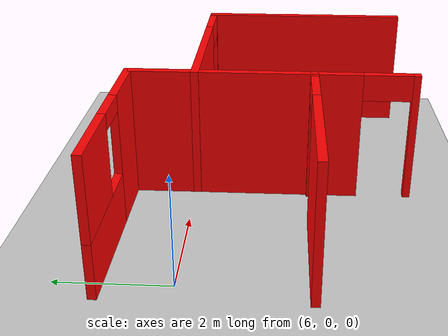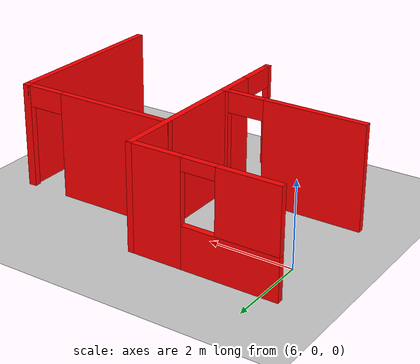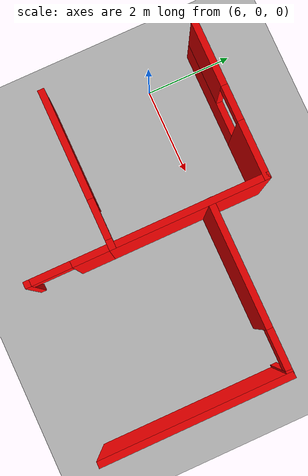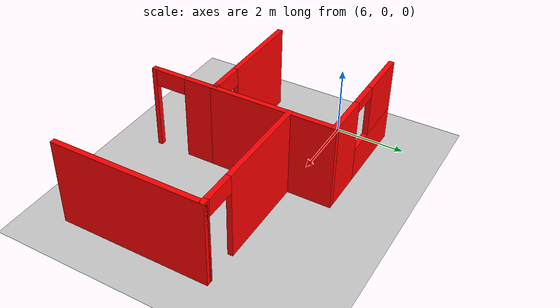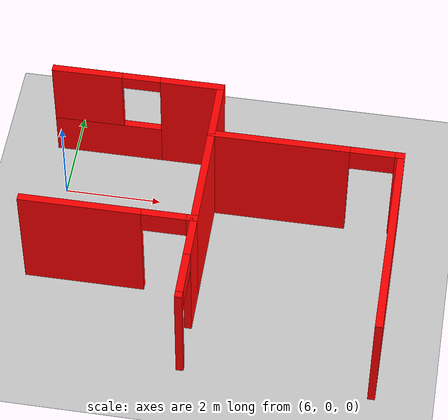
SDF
<sdf version="1.6">
 <world name="default">
  <model name="ground_plane">
   <static>1</static>
   <link name="link">
    <collision name="collision">
     <geometry><plane><normal>0 0 1</normal><size>100 100</size></plane></geometry>
     <surface><friction><ode><mu>100</mu><mu2>50</mu2></ode></friction></surface>
    </collision>
    <visual name="visual">
     <cast_shadows>0</cast_shadows>
     <geometry><plane><normal>0 0 1</normal><size>100 100</size></plane></geometry>
     <material>
      <script><uri>file://media/materials/scripts/gazebo.material</uri><name>Gazebo/Grey</name></script>
     </material>
    </visual>
   </link>
  </model>
  <model name="1floorHouse">
   <link name="Wall_322">
    <pose>2.9912 2.388 0 0 -0 0</pose>
    <visual name="Wall_322_Visual_0">
     <pose>-0.562525 0 1.25 0 -0 0</pose>
     <geometry><box><size>2.47495 0.15 2.5</size></box></geometry>
     <material>
      <script><uri>file://media/materials/scripts/gazebo.material</uri><name>Gazebo/Grey</name></script>
      <ambient>1 0 0 1</ambient>
      <diffuse>0.7 0.7 0.7 1</diffuse>
      <specular>0.01 0.01 0.01 1</specular>
      <emissive>0 0 0 1</emissive>
     </material>
    </visual>
    <visual name="Wall_322_Visual_1">
     <pose>1.68748 0 1.25 0 -0 0</pose>
     <geometry><box><size>0.225051 0.15 2.5</size></box></geometry>
     <material>
      <script><uri>file://media/materials/scripts/gazebo.material</uri><name>Gazebo/Grey</name></script>
      <ambient>1 0 0 1</ambient>
      <diffuse>0.7 0.7 0.7 1</diffuse>
      <specular>0.01 0.01 0.01 1</specular>
      <emissive>0 0 0 1</emissive>
     </material>
    </visual>
    <visual name="Wall_322_Visual_2">
     <pose>1.12495 0 2.25 0 -0 0</pose>
     <geometry><box><size>0.9 0.15 0.5</size></box></geometry>
     <material>
      <script><uri>file://media/materials/scripts/gazebo.material</uri><name>Gazebo/Grey</name></script>
      <ambient>1 0 0 1</ambient>
      <diffuse>0.7 0.7 0.7 1</diffuse>
      <specular>0.01 0.01 0.01 1</specular>
      <emissive>0 0 0 1</emissive>
     </material>
    </visual>
    <collision name="Wall_322_Collision_0">
     <pose>-0.562525 0 1.25 0 -0 0</pose>
     <geometry><box><size>2.47495 0.15 2.5</size></box></geometry>
     <surface>
      <friction>
       <ode><mu>1</mu><mu2>1</mu2><fdir1>0 0 0</fdir1><slip1>0</slip1><slip2>0</slip2></ode>
       <torsional>
        <coefficient>1</coefficient>
        <patch_radius>0</patch_radius>
        <surface_radius>0</surface_radius>
        <use_patch_radius>1</use_patch_radius>
        <ode><slip>0</slip></ode>
       </torsional>
      </friction>
      <bounce><restitution_coefficient>0</restitution_coefficient><threshold>1e+06</threshold></bounce>
      <contact>
       <collide_without_contact>0</collide_without_contact>
       <collide_without_contact_bitmask>1</collide_without_contact_bitmask>
       <collide_bitmask>1</collide_bitmask>
       <ode>
        <soft_cfm>0</soft_cfm>
        <soft_erp>0.2</soft_erp>
        <kp>1e+13</kp>
        <kd>1</kd>
        <max_vel>0.01</max_vel>
        <min_depth>0</min_depth>
       </ode>
       <bullet>
        <split_impulse>1</split_impulse>
        <split_impulse_penetration_threshold>-0.01</split_impulse_penetration_threshold>
        <soft_cfm>0</soft_cfm>
        <soft_erp>0.2</soft_erp>
        <kp>1e+13</kp>
        <kd>1</kd>
       </bullet>
      </contact>
     </surface>
    </collision>
    <collision name="Wall_322_Collision_2">
     <pose>1.12495 0 2.25 0 -0 0</pose>
     <geometry><box><size>0.9 0.15 0.5</size></box></geometry>
     <surface>
      <friction>
       <ode><mu>1</mu><mu2>1</mu2><fdir1>0 0 0</fdir1><slip1>0</slip1><slip2>0</slip2></ode>
       <torsional>
        <coefficient>1</coefficient>
        <patch_radius>0</patch_radius>
        <surface_radius>0</surface_radius>
        <use_patch_radius>1</use_patch_radius>
        <ode><slip>0</slip></ode>
       </torsional>
      </friction>
      <bounce><restitution_coefficient>0</restitution_coefficient><threshold>1e+06</threshold></bounce>
      <contact>
       <collide_without_contact>0</collide_without_contact>
       <collide_without_contact_bitmask>1</collide_without_contact_bitmask>
       <collide_bitmask>1</collide_bitmask>
       <ode>
        <soft_cfm>0</soft_cfm>
        <soft_erp>0.2</soft_erp>
        <kp>1e+13</kp>
        <kd>1</kd>
        <max_vel>0.01</max_vel>
        <min_depth>0</min_depth>
       </ode>
       <bullet>
        <split_impulse>1</split_impulse>
        <split_impulse_penetration_threshold>-0.01</split_impulse_penetration_threshold>
        <soft_cfm>0</soft_cfm>
        <soft_erp>0.2</soft_erp>
        <kp>1e+13</kp>
        <kd>1</kd>
       </bullet>
      </contact>
     </surface>
    </collision>
    <collision name="Wall_322_Collision_1">
     <pose>1.68748 0 1.25 0 -0 0</pose>
     <geometry><box><size>0.225051 0.15 2.5</size></box></geometry>
     <surface>
      <friction>
       <ode><mu>1</mu><mu2>1</mu2><fdir1>0 0 0</fdir1><slip1>0</slip1><slip2>0</slip2></ode>
       <torsional>
        <coefficient>1</coefficient>
        <patch_radius>0</patch_radius>
        <surface_radius>0</surface_radius>
        <use_patch_radius>1</use_patch_radius>
        <ode><slip>0</slip></ode>
       </torsional>
      </friction>
      <bounce><restitution_coefficient>0</restitution_coefficient><threshold>1e+06</threshold></bounce>
      <contact>
       <collide_without_contact>0</collide_without_contact>
       <collide_without_contact_bitmask>1</collide_without_contact_bitmask>
       <collide_bitmask>1</collide_bitmask>
       <ode>
        <soft_cfm>0</soft_cfm>
        <soft_erp>0.2</soft_erp>
        <kp>1e+13</kp>
        <kd>1</kd>
        <max_vel>0.01</max_vel>
        <min_depth>0</min_depth>
       </ode>
       <bullet>
        <split_impulse>1</split_impulse>
        <split_impulse_penetration_threshold>-0.01</split_impulse_penetration_threshold>
        <soft_cfm>0</soft_cfm>
        <soft_erp>0.2</soft_erp>
        <kp>1e+13</kp>
        <kd>1</kd>
       </bullet>
      </contact>
     </surface>
    </collision>
   </link>
   <link name="Wall_323">
    <pose>4.71621 4.113 0 0 -0 1.5708</pose>
    <visual name="Wall_323_Visual">
     <pose>0 0 1.25 0 -0 0</pose>
     <geometry><box><size>3.6 0.15 2.5</size></box></geometry>
     <material>
      <script><uri>file://media/materials/scripts/gazebo.material</uri><name>Gazebo/Grey</name></script>
      <ambient>1 0 0 1</ambient>
      <diffuse>0.7 0.7 0.7 1</diffuse>
      <specular>0.01 0.01 0.01 1</specular>
      <emissive>0 0 0 1</emissive>
     </material>
    </visual>
    <collision name="Wall_323_Collision">
     <pose>0 0 1.25 0 -0 0</pose>
     <geometry><box><size>3.6 0.15 2.5</size></box></geometry>
     <surface>
      <friction>
       <ode><mu>1</mu><mu2>1</mu2><fdir1>0 0 0</fdir1><slip1>0</slip1><slip2>0</slip2></ode>
       <torsional>
        <coefficient>1</coefficient>
        <patch_radius>0</patch_radius>
        <surface_radius>0</surface_radius>
        <use_patch_radius>1</use_patch_radius>
        <ode><slip>0</slip></ode>
       </torsional>
      </friction>
      <bounce><restitution_coefficient>0</restitution_coefficient><threshold>1e+06</threshold></bounce>
      <contact>
       <collide_without_contact>0</collide_without_contact>
       <collide_without_contact_bitmask>1</collide_without_contact_bitmask>
       <collide_bitmask>1</collide_bitmask>
       <ode>
        <soft_cfm>0</soft_cfm>
        <soft_erp>0.2</soft_erp>
        <kp>1e+13</kp>
        <kd>1</kd>
        <max_vel>0.01</max_vel>
        <min_depth>0</min_depth>
       </ode>
       <bullet>
        <split_impulse>1</split_impulse>
        <split_impulse_penetration_threshold>-0.01</split_impulse_penetration_threshold>
        <soft_cfm>0</soft_cfm>
        <soft_erp>0.2</soft_erp>
        <kp>1e+13</kp>
        <kd>1</kd>
       </bullet>
      </contact>
     </surface>
    </collision>
   </link>
   <link name="Wall_324">
    <pose>2.9912 5.838 0 0 -0 3.14159</pose>
    <visual name="Wall_324_Visual_0">
     <pose>-1.13431 0 1.25 0 -0 0</pose>
     <geometry><box><size>1.33138 0.15 2.5</size></box></geometry>
     <material>
      <script><uri>file://media/materials/scripts/gazebo.material</uri><name>Gazebo/Grey</name></script>
      <ambient>1 0 0 1</ambient>
      <diffuse>0.7 0.7 0.7 1</diffuse>
      <specular>0.01 0.01 0.01 1</specular>
      <emissive>0 0 0 1</emissive>
     </material>
    </visual>
    <visual name="Wall_324_Visual_1">
     <pose>0.665691 0 0.5 0 -0 0</pose>
     <geometry><box><size>2.26862 0.15 1</size></box></geometry>
     <material>
      <script><uri>file://media/materials/scripts/gazebo.material</uri><name>Gazebo/Grey</name></script>
      <ambient>1 0 0 1</ambient>
      <diffuse>0.7 0.7 0.7 1</diffuse>
      <specular>0.01 0.01 0.01 1</specular>
      <emissive>0 0 0 1</emissive>
     </material>
    </visual>
    <visual name="Wall_324_Visual_3">
     <pose>-0.068619 0 2.35 0 -0 0</pose>
     <geometry><box><size>0.8 0.15 0.3</size></box></geometry>
     <material>
      <script><uri>file://media/materials/scripts/gazebo.material</uri><name>Gazebo/Grey</name></script>
      <ambient>1 0 0 1</ambient>
      <diffuse>0.7 0.7 0.7 1</diffuse>
      <specular>0.01 0.01 0.01 1</specular>
      <emissive>0 0 0 1</emissive>
     </material>
    </visual>
    <visual name="Wall_324_Visual_2">
     <pose>1.06569 0 1.75 0 -0 0</pose>
     <geometry><box><size>1.46862 0.15 1.5</size></box></geometry>
     <material>
      <script><uri>file://media/materials/scripts/gazebo.material</uri><name>Gazebo/Grey</name></script>
      <ambient>1 0 0 1</ambient>
      <diffuse>0.7 0.7 0.7 1</diffuse>
      <specular>0.01 0.01 0.01 1</specular>
      <emissive>0 0 0 1</emissive>
     </material>
    </visual>
    <collision name="Wall_324_Collision_0">
     <pose>-1.13431 0 1.25 0 -0 0</pose>
     <geometry><box><size>1.33138 0.15 2.5</size></box></geometry>
     <surface>
      <friction>
       <ode><mu>1</mu><mu2>1</mu2><fdir1>0 0 0</fdir1><slip1>0</slip1><slip2>0</slip2></ode>
       <torsional>
        <coefficient>1</coefficient>
        <patch_radius>0</patch_radius>
        <surface_radius>0</surface_radius>
        <use_patch_radius>1</use_patch_radius>
        <ode><slip>0</slip></ode>
       </torsional>
      </friction>
      <bounce><restitution_coefficient>0</restitution_coefficient><threshold>1e+06</threshold></bounce>
      <contact>
       <collide_without_contact>0</collide_without_contact>
       <collide_without_contact_bitmask>1</collide_without_contact_bitmask>
       <collide_bitmask>1</collide_bitmask>
       <ode>
        <soft_cfm>0</soft_cfm>
        <soft_erp>0.2</soft_erp>
        <kp>1e+13</kp>
        <kd>1</kd>
        <max_vel>0.01</max_vel>
        <min_depth>0</min_depth>
       </ode>
       <bullet>
        <split_impulse>1</split_impulse>
        <split_impulse_penetration_threshold>-0.01</split_impulse_penetration_threshold>
        <soft_cfm>0</soft_cfm>
        <soft_erp>0.2</soft_erp>
        <kp>1e+13</kp>
        <kd>1</kd>
       </bullet>
      </contact>
     </surface>
    </collision>
    <collision name="Wall_324_Collision_1">
     <pose>0.665691 0 0.5 0 -0 0</pose>
     <geometry><box><size>2.26862 0.15 1</size></box></geometry>
     <surface>
      <friction>
       <ode><mu>1</mu><mu2>1</mu2><fdir1>0 0 0</fdir1><slip1>0</slip1><slip2>0</slip2></ode>
       <torsional>
        <coefficient>1</coefficient>
        <patch_radius>0</patch_radius>
        <surface_radius>0</surface_radius>
        <use_patch_radius>1</use_patch_radius>
        <ode><slip>0</slip></ode>
       </torsional>
      </friction>
      <bounce><restitution_coefficient>0</restitution_coefficient><threshold>1e+06</threshold></bounce>
      <contact>
       <collide_without_contact>0</collide_without_contact>
       <collide_without_contact_bitmask>1</collide_without_contact_bitmask>
       <collide_bitmask>1</collide_bitmask>
       <ode>
        <soft_cfm>0</soft_cfm>
        <soft_erp>0.2</soft_erp>
        <kp>1e+13</kp>
        <kd>1</kd>
        <max_vel>0.01</max_vel>
        <min_depth>0</min_depth>
       </ode>
       <bullet>
        <split_impulse>1</split_impulse>
        <split_impulse_penetration_threshold>-0.01</split_impulse_penetration_threshold>
        <soft_cfm>0</soft_cfm>
        <soft_erp>0.2</soft_erp>
        <kp>1e+13</kp>
        <kd>1</kd>
       </bullet>
      </contact>
     </surface>
    </collision>
    <collision name="Wall_324_Collision_2">
     <pose>1.06569 0 1.75 0 -0 0</pose>
     <geometry><box><size>1.46862 0.15 1.5</size></box></geometry>
     <surface>
      <friction>
       <ode><mu>1</mu><mu2>1</mu2><fdir1>0 0 0</fdir1><slip1>0</slip1><slip2>0</slip2></ode>
       <torsional>
        <coefficient>1</coefficient>
        <patch_radius>0</patch_radius>
        <surface_radius>0</surface_radius>
        <use_patch_radius>1</use_patch_radius>
        <ode><slip>0</slip></ode>
       </torsional>
      </friction>
      <bounce><restitution_coefficient>0</restitution_coefficient><threshold>1e+06</threshold></bounce>
      <contact>
       <collide_without_contact>0</collide_without_contact>
       <collide_without_contact_bitmask>1</collide_without_contact_bitmask>
       <collide_bitmask>1</collide_bitmask>
       <ode>
        <soft_cfm>0</soft_cfm>
        <soft_erp>0.2</soft_erp>
        <kp>1e+13</kp>
        <kd>1</kd>
        <max_vel>0.01</max_vel>
        <min_depth>0</min_depth>
       </ode>
       <bullet>
        <split_impulse>1</split_impulse>
        <split_impulse_penetration_threshold>-0.01</split_impulse_penetration_threshold>
        <soft_cfm>0</soft_cfm>
        <soft_erp>0.2</soft_erp>
        <kp>1e+13</kp>
        <kd>1</kd>
       </bullet>
      </contact>
     </surface>
    </collision>
    <collision name="Wall_324_Collision_3">
     <pose>-0.068619 0 2.35 0 -0 0</pose>
     <geometry><box><size>0.8 0.15 0.3</size></box></geometry>
     <surface>
      <friction>
       <ode><mu>1</mu><mu2>1</mu2><fdir1>0 0 0</fdir1><slip1>0</slip1><slip2>0</slip2></ode>
       <torsional>
        <coefficient>1</coefficient>
        <patch_radius>0</patch_radius>
        <surface_radius>0</surface_radius>
        <use_patch_radius>1</use_patch_radius>
        <ode><slip>0</slip></ode>
       </torsional>
      </friction>
      <bounce><restitution_coefficient>0</restitution_coefficient><threshold>1e+06</threshold></bounce>
      <contact>
       <collide_without_contact>0</collide_without_contact>
       <collide_without_contact_bitmask>1</collide_without_contact_bitmask>
       <collide_bitmask>1</collide_bitmask>
       <ode>
        <soft_cfm>0</soft_cfm>
        <soft_erp>0.2</soft_erp>
        <kp>1e+13</kp>
        <kd>1</kd>
        <max_vel>0.01</max_vel>
        <min_depth>0</min_depth>
       </ode>
       <bullet>
        <split_impulse>1</split_impulse>
        <split_impulse_penetration_threshold>-0.01</split_impulse_penetration_threshold>
        <soft_cfm>0</soft_cfm>
        <soft_erp>0.2</soft_erp>
        <kp>1e+13</kp>
        <kd>1</kd>
       </bullet>
      </contact>
     </surface>
    </collision>
   </link>
   <link name="Wall_326">
    <pose>6.6372 4.588 0 0 -0 0</pose>
    <visual name="Wall_326_Visual_0">
     <pose>-0.551177 0 1.25 0 -0 0</pose>
     <geometry><box><size>2.89765 0.15 2.5</size></box></geometry>
     <material>
      <script><uri>file://media/materials/scripts/gazebo.material</uri><name>Gazebo/Grey</name></script>
      <ambient>1 0 0 1</ambient>
      <diffuse>0.7 0.7 0.7 1</diffuse>
      <specular>0.01 0.01 0.01 1</specular>
      <emissive>0 0 0 1</emissive>
     </material>
    </visual>
    <visual name="Wall_326_Visual_1">
     <pose>1.89882 0 1.25 0 -0 0</pose>
     <geometry><box><size>0.202354 0.15 2.5</size></box></geometry>
     <material>
      <script><uri>file://media/materials/scripts/gazebo.material</uri><name>Gazebo/Grey</name></script>
      <ambient>1 0 0 1</ambient>
      <diffuse>0.7 0.7 0.7 1</diffuse>
      <specular>0.01 0.01 0.01 1</specular>
      <emissive>0 0 0 1</emissive>
     </material>
    </visual>
    <visual name="Wall_326_Visual_2">
     <pose>1.34765 0 2.25 0 -0 0</pose>
     <geometry><box><size>0.9 0.15 0.5</size></box></geometry>
     <material>
      <script><uri>file://media/materials/scripts/gazebo.material</uri><name>Gazebo/Grey</name></script>
      <ambient>1 0 0 1</ambient>
      <diffuse>0.7 0.7 0.7 1</diffuse>
      <specular>0.01 0.01 0.01 1</specular>
      <emissive>0 0 0 1</emissive>
     </material>
    </visual>
    <collision name="Wall_326_Collision_0">
     <pose>-0.551177 0 1.25 0 -0 0</pose>
     <geometry><box><size>2.89765 0.15 2.5</size></box></geometry>
     <surface>
      <friction>
       <ode><mu>1</mu><mu2>1</mu2><fdir1>0 0 0</fdir1><slip1>0</slip1><slip2>0</slip2></ode>
       <torsional>
        <coefficient>1</coefficient>
        <patch_radius>0</patch_radius>
        <surface_radius>0</surface_radius>
        <use_patch_radius>1</use_patch_radius>
        <ode><slip>0</slip></ode>
       </torsional>
      </friction>
      <bounce><restitution_coefficient>0</restitution_coefficient><threshold>1e+06</threshold></bounce>
      <contact>
       <collide_without_contact>0</collide_without_contact>
       <collide_without_contact_bitmask>1</collide_without_contact_bitmask>
       <collide_bitmask>1</collide_bitmask>
       <ode>
        <soft_cfm>0</soft_cfm>
        <soft_erp>0.2</soft_erp>
        <kp>1e+13</kp>
        <kd>1</kd>
        <max_vel>0.01</max_vel>
        <min_depth>0</min_depth>
       </ode>
       <bullet>
        <split_impulse>1</split_impulse>
        <split_impulse_penetration_threshold>-0.01</split_impulse_penetration_threshold>
        <soft_cfm>0</soft_cfm>
        <soft_erp>0.2</soft_erp>
        <kp>1e+13</kp>
        <kd>1</kd>
       </bullet>
      </contact>
     </surface>
    </collision>
    <collision name="Wall_326_Collision_2">
     <pose>1.34765 0 2.25 0 -0 0</pose>
     <geometry><box><size>0.9 0.15 0.5</size></box></geometry>
     <surface>
      <friction>
       <ode><mu>1</mu><mu2>1</mu2><fdir1>0 0 0</fdir1><slip1>0</slip1><slip2>0</slip2></ode>
       <torsional>
        <coefficient>1</coefficient>
        <patch_radius>0</patch_radius>
        <surface_radius>0</surface_radius>
        <use_patch_radius>1</use_patch_radius>
        <ode><slip>0</slip></ode>
       </torsional>
      </friction>
      <bounce><restitution_coefficient>0</restitution_coefficient><threshold>1e+06</threshold></bounce>
      <contact>
       <collide_without_contact>0</collide_without_contact>
       <collide_without_contact_bitmask>1</collide_without_contact_bitmask>
       <collide_bitmask>1</collide_bitmask>
       <ode>
        <soft_cfm>0</soft_cfm>
        <soft_erp>0.2</soft_erp>
        <kp>1e+13</kp>
        <kd>1</kd>
        <max_vel>0.01</max_vel>
        <min_depth>0</min_depth>
       </ode>
       <bullet>
        <split_impulse>1</split_impulse>
        <split_impulse_penetration_threshold>-0.01</split_impulse_penetration_threshold>
        <soft_cfm>0</soft_cfm>
        <soft_erp>0.2</soft_erp>
        <kp>1e+13</kp>
        <kd>1</kd>
       </bullet>
      </contact>
     </surface>
    </collision>
    <collision name="Wall_326_Collision_1">
     <pose>1.89882 0 1.25 0 -0 0</pose>
     <geometry><box><size>0.202354 0.15 2.5</size></box></geometry>
     <surface>
      <friction>
       <ode><mu>1</mu><mu2>1</mu2><fdir1>0 0 0</fdir1><slip1>0</slip1><slip2>0</slip2></ode>
       <torsional>
        <coefficient>1</coefficient>
        <patch_radius>0</patch_radius>
        <surface_radius>0</surface_radius>
        <use_patch_radius>1</use_patch_radius>
        <ode><slip>0</slip></ode>
       </torsional>
      </friction>
      <bounce><restitution_coefficient>0</restitution_coefficient><threshold>1e+06</threshold></bounce>
      <contact>
       <collide_without_contact>0</collide_without_contact>
       <collide_without_contact_bitmask>1</collide_without_contact_bitmask>
       <collide_bitmask>1</collide_bitmask>
       <ode>
        <soft_cfm>0</soft_cfm>
        <soft_erp>0.2</soft_erp>
        <kp>1e+13</kp>
        <kd>1</kd>
        <max_vel>0.01</max_vel>
        <min_depth>0</min_depth>
       </ode>
       <bullet>
        <split_impulse>1</split_impulse>
        <split_impulse_penetration_threshold>-0.01</split_impulse_penetration_threshold>
        <soft_cfm>0</soft_cfm>
        <soft_erp>0.2</soft_erp>
        <kp>1e+13</kp>
        <kd>1</kd>
       </bullet>
      </contact>
     </surface>
    </collision>
   </link>
   <link name="Wall_327">
    <pose>8.56221 2.513 0 0 0 -1.5708</pose>
    <visual name="Wall_327_Visual">
     <pose>0 0 1.25 0 -0 0</pose>
     <geometry><box><size>4.3 0.15 2.5</size></box></geometry>
     <material>
      <script><uri>file://media/materials/scripts/gazebo.material</uri><name>Gazebo/Grey</name></script>
      <ambient>1 0 0 1</ambient>
      <diffuse>0.7 0.7 0.7 1</diffuse>
      <specular>0.01 0.01 0.01 1</specular>
      <emissive>0 0 0 1</emissive>
     </material>
    </visual>
    <collision name="Wall_327_Collision">
     <pose>0 0 1.25 0 -0 0</pose>
     <geometry><box><size>4.3 0.15 2.5</size></box></geometry>
     <surface>
      <friction>
       <ode><mu>1</mu><mu2>1</mu2><fdir1>0 0 0</fdir1><slip1>0</slip1><slip2>0</slip2></ode>
       <torsional>
        <coefficient>1</coefficient>
        <patch_radius>0</patch_radius>
        <surface_radius>0</surface_radius>
        <use_patch_radius>1</use_patch_radius>
        <ode><slip>0</slip></ode>
       </torsional>
      </friction>
      <bounce><restitution_coefficient>0</restitution_coefficient><threshold>1e+06</threshold></bounce>
      <contact>
       <collide_without_contact>0</collide_without_contact>
       <collide_without_contact_bitmask>1</collide_without_contact_bitmask>
       <collide_bitmask>1</collide_bitmask>
       <ode>
        <soft_cfm>0</soft_cfm>
        <soft_erp>0.2</soft_erp>
        <kp>1e+13</kp>
        <kd>1</kd>
        <max_vel>0.01</max_vel>
        <min_depth>0</min_depth>
       </ode>
       <bullet>
        <split_impulse>1</split_impulse>
        <split_impulse_penetration_threshold>-0.01</split_impulse_penetration_threshold>
        <soft_cfm>0</soft_cfm>
        <soft_erp>0.2</soft_erp>
        <kp>1e+13</kp>
        <kd>1</kd>
       </bullet>
      </contact>
     </surface>
    </collision>
   </link>
   <link name="Wall_330">
    <pose>4.71621 1.463 0 0 0 -1.5708</pose>
    <visual name="Wall_330_Visual_0">
     <pose>-0.517454 0 1.25 0 -0 0</pose>
     <geometry><box><size>0.965091 0.15 2.5</size></box></geometry>
     <material>
      <script><uri>file://media/materials/scripts/gazebo.material</uri><name>Gazebo/Grey</name></script>
      <ambient>1 0 0 1</ambient>
      <diffuse>0.7 0.7 0.7 1</diffuse>
      <specular>0.01 0.01 0.01 1</specular>
      <emissive>0 0 0 1</emissive>
     </material>
    </visual>
    <visual name="Wall_330_Visual_1">
     <pose>0.932546 0 1.25 0 -0 0</pose>
     <geometry><box><size>0.134909 0.15 2.5</size></box></geometry>
     <material>
      <script><uri>file://media/materials/scripts/gazebo.material</uri><name>Gazebo/Grey</name></script>
      <ambient>1 0 0 1</ambient>
      <diffuse>0.7 0.7 0.7 1</diffuse>
      <specular>0.01 0.01 0.01 1</specular>
      <emissive>0 0 0 1</emissive>
     </material>
    </visual>
    <visual name="Wall_330_Visual_2">
     <pose>0.415091 0 2.25 0 -0 0</pose>
     <geometry><box><size>0.9 0.15 0.5</size></box></geometry>
     <material>
      <script><uri>file://media/materials/scripts/gazebo.material</uri><name>Gazebo/Grey</name></script>
      <ambient>1 0 0 1</ambient>
      <diffuse>0.7 0.7 0.7 1</diffuse>
      <specular>0.01 0.01 0.01 1</specular>
      <emissive>0 0 0 1</emissive>
     </material>
    </visual>
    <collision name="Wall_330_Collision_1">
     <pose>0.932546 0 1.25 0 -0 0</pose>
     <geometry><box><size>0.134909 0.15 2.5</size></box></geometry>
     <surface>
      <friction>
       <ode><mu>1</mu><mu2>1</mu2><fdir1>0 0 0</fdir1><slip1>0</slip1><slip2>0</slip2></ode>
       <torsional>
        <coefficient>1</coefficient>
        <patch_radius>0</patch_radius>
        <surface_radius>0</surface_radius>
        <use_patch_radius>1</use_patch_radius>
        <ode><slip>0</slip></ode>
       </torsional>
      </friction>
      <bounce><restitution_coefficient>0</restitution_coefficient><threshold>1e+06</threshold></bounce>
      <contact>
       <collide_without_contact>0</collide_without_contact>
       <collide_without_contact_bitmask>1</collide_without_contact_bitmask>
       <collide_bitmask>1</collide_bitmask>
       <ode>
        <soft_cfm>0</soft_cfm>
        <soft_erp>0.2</soft_erp>
        <kp>1e+13</kp>
        <kd>1</kd>
        <max_vel>0.01</max_vel>
        <min_depth>0</min_depth>
       </ode>
       <bullet>
        <split_impulse>1</split_impulse>
        <split_impulse_penetration_threshold>-0.01</split_impulse_penetration_threshold>
        <soft_cfm>0</soft_cfm>
        <soft_erp>0.2</soft_erp>
        <kp>1e+13</kp>
        <kd>1</kd>
       </bullet>
      </contact>
     </surface>
    </collision>
    <collision name="Wall_330_Collision_0">
     <pose>-0.517454 0 1.25 0 -0 0</pose>
     <geometry><box><size>0.965091 0.15 2.5</size></box></geometry>
     <surface>
      <friction>
       <ode><mu>1</mu><mu2>1</mu2><fdir1>0 0 0</fdir1><slip1>0</slip1><slip2>0</slip2></ode>
       <torsional>
        <coefficient>1</coefficient>
        <patch_radius>0</patch_radius>
        <surface_radius>0</surface_radius>
        <use_patch_radius>1</use_patch_radius>
        <ode><slip>0</slip></ode>
       </torsional>
      </friction>
      <bounce><restitution_coefficient>0</restitution_coefficient><threshold>1e+06</threshold></bounce>
      <contact>
       <collide_without_contact>0</collide_without_contact>
       <collide_without_contact_bitmask>1</collide_without_contact_bitmask>
       <collide_bitmask>1</collide_bitmask>
       <ode>
        <soft_cfm>0</soft_cfm>
        <soft_erp>0.2</soft_erp>
        <kp>1e+13</kp>
        <kd>1</kd>
        <max_vel>0.01</max_vel>
        <min_depth>0</min_depth>
       </ode>
       <bullet>
        <split_impulse>1</split_impulse>
        <split_impulse_penetration_threshold>-0.01</split_impulse_penetration_threshold>
        <soft_cfm>0</soft_cfm>
        <soft_erp>0.2</soft_erp>
        <kp>1e+13</kp>
        <kd>1</kd>
       </bullet>
      </contact>
     </surface>
    </collision>
    <collision name="Wall_330_Collision_2">
     <pose>0.415091 0 2.25 0 -0 0</pose>
     <geometry><box><size>0.9 0.15 0.5</size></box></geometry>
     <surface>
      <friction>
       <ode><mu>1</mu><mu2>1</mu2><fdir1>0 0 0</fdir1><slip1>0</slip1><slip2>0</slip2></ode>
       <torsional>
        <coefficient>1</coefficient>
        <patch_radius>0</patch_radius>
        <surface_radius>0</surface_radius>
        <use_patch_radius>1</use_patch_radius>
        <ode><slip>0</slip></ode>
       </torsional>
      </friction>
      <bounce><restitution_coefficient>0</restitution_coefficient><threshold>1e+06</threshold></bounce>
      <contact>
       <collide_without_contact>0</collide_without_contact>
       <collide_without_contact_bitmask>1</collide_without_contact_bitmask>
       <collide_bitmask>1</collide_bitmask>
       <ode>
        <soft_cfm>0</soft_cfm>
        <soft_erp>0.2</soft_erp>
        <kp>1e+13</kp>
        <kd>1</kd>
        <max_vel>0.01</max_vel>
        <min_depth>0</min_depth>
       </ode>
       <bullet>
        <split_impulse>1</split_impulse>
        <split_impulse_penetration_threshold>-0.01</split_impulse_penetration_threshold>
        <soft_cfm>0</soft_cfm>
        <soft_erp>0.2</soft_erp>
        <kp>1e+13</kp>
        <kd>1</kd>
       </bullet>
      </contact>
     </surface>
    </collision>
   </link>
   <static>1</static>
   <pose>4.39833 -4.61297 0 0 -0 0</pose>
  </model>
 </world>
</sdf>
